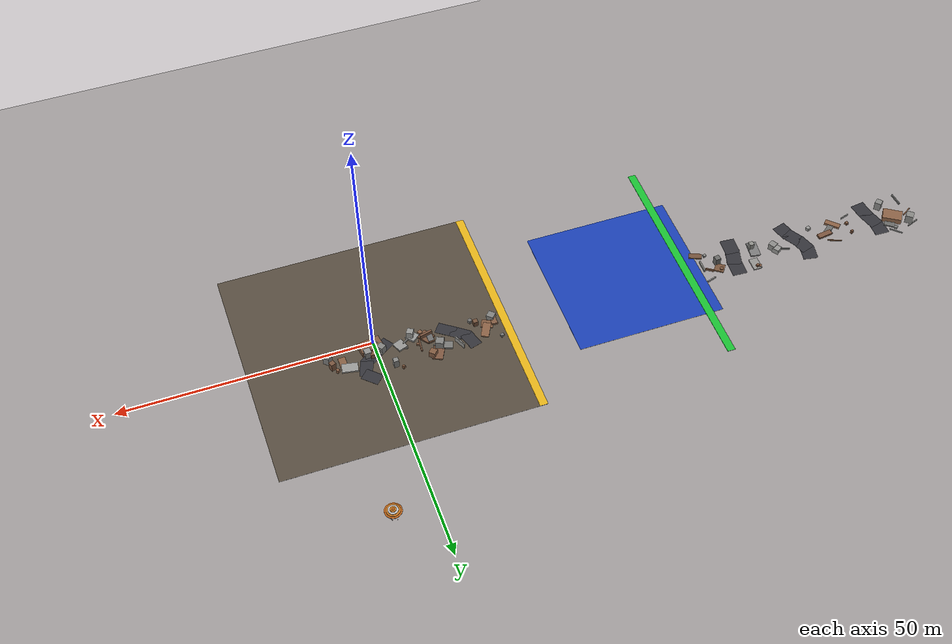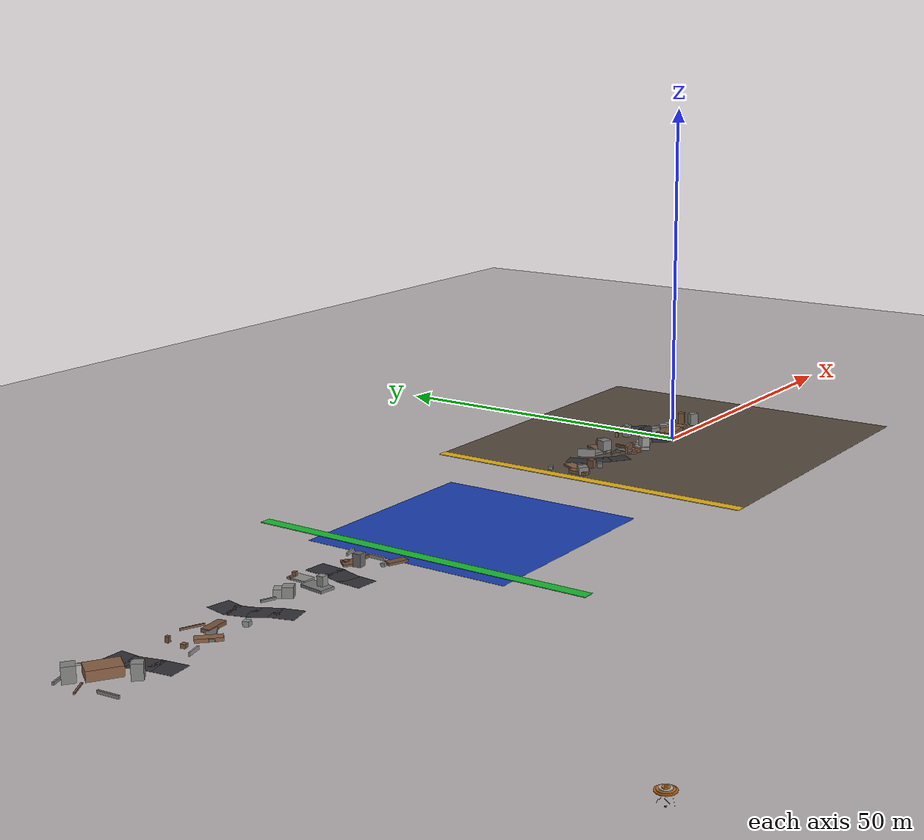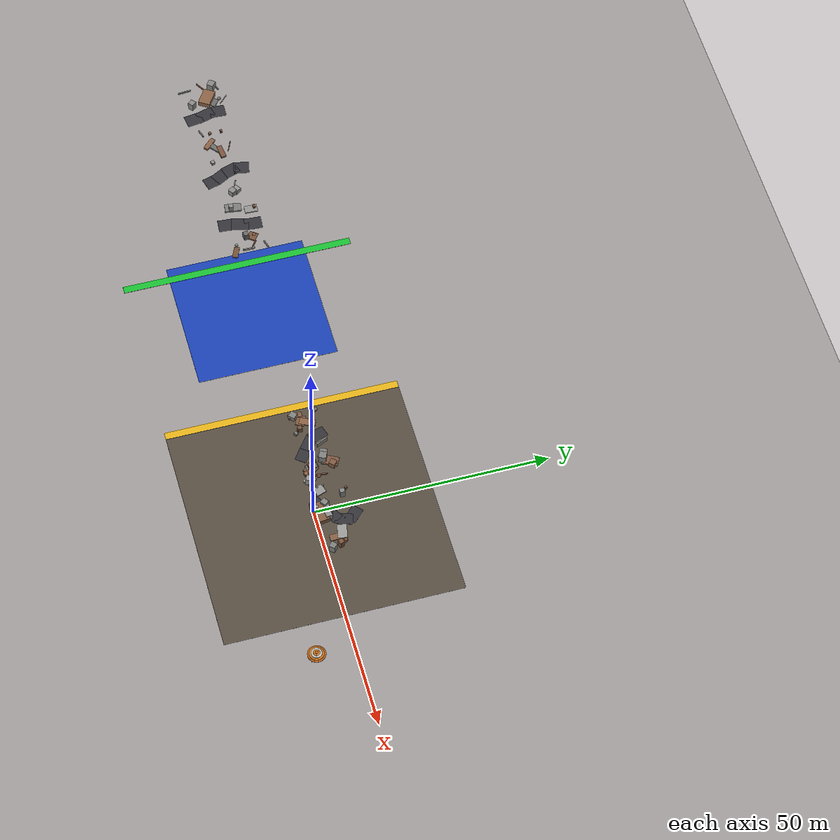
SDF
<sdf version="1.6">
 <world name="navitas_arena">
  <model name="ground_plane">
   <static>true</static>
   <link name="link">
    <collision name="collision">
     <geometry><plane><normal>0 0 1</normal><size>400 400</size></plane></geometry>
     <surface><friction><ode><mu>0.800</mu><mu2>0.800</mu2></ode></friction></surface>
    </collision>
    <visual name="visual">
     <cast_shadows>false</cast_shadows>
     <geometry><plane><normal>0 0 1</normal><size>400 400</size></plane></geometry>
     <material><ambient>0.300 0.290 0.270 1</ambient><diffuse>0.300 0.290 0.270 1</diffuse></material>
    </visual>
   </link>
  </model>
  <model name="landing">
   <static>true</static>
   <pose>-52.000 0.000 0.010 0 0 0.000</pose>
   <link name="link">
    <collision name="col"><geometry><box><size>30.000 30.000 0.020</size></box></geometry></collision>
    <visual name="vis">
     <geometry><box><size>30.000 30.000 0.020</size></box></geometry>
     <material><ambient>0.10 0.25 0.70 1</ambient><diffuse>0.10 0.25 0.70 1</diffuse></material>
    </visual>
   </link>
  </model>
  <model name="brd_kolay_E">
   <static>true</static>
   <pose>-64.200 0.000 0.040 0 0 0.000</pose>
   <link name="link">
    <collision name="col"><geometry><box><size>1.600 50.000 0.080</size></box></geometry></collision>
    <visual name="vis">
     <geometry><box><size>1.600 50.000 0.080</size></box></geometry>
     <material><ambient>0.10 0.75 0.20 1</ambient><diffuse>0.10 0.75 0.20 1</diffuse></material>
    </visual>
   </link>
  </model>
  <model name="road_kolay_1_12">
   <static>true</static>
   <pose>-105.322 0.400 0.040 0 0 1.706</pose>
   <link name="link">
    <collision name="col"><geometry><box><size>3.726 3.000 0.020</size></box></geometry></collision>
    <visual name="vis">
     <geometry><box><size>3.726 3.000 0.020</size></box></geometry>
     <material><ambient>0.20 0.20 0.22 1</ambient><diffuse>0.20 0.20 0.22 1</diffuse></material>
    </visual>
   </link>
  </model>
  <model name="road_kolay_1_13">
   <static>true</static>
   <pose>-105.885 3.200 0.040 0 0 1.831</pose>
   <link name="link">
    <collision name="col"><geometry><box><size>3.798 3.000 0.020</size></box></geometry></collision>
    <visual name="vis">
     <geometry><box><size>3.798 3.000 0.020</size></box></geometry>
     <material><ambient>0.20 0.20 0.22 1</ambient><diffuse>0.20 0.20 0.22 1</diffuse></material>
    </visual>
   </link>
  </model>
  <model name="road_kolay_1_14">
   <static>true</static>
   <pose>-106.227 5.898 0.040 0 0 1.546</pose>
   <link name="link">
    <collision name="col"><geometry><box><size>3.496 3.000 0.020</size></box></geometry></collision>
    <visual name="vis">
     <geometry><box><size>3.496 3.000 0.020</size></box></geometry>
     <material><ambient>0.20 0.20 0.22 1</ambient><diffuse>0.20 0.20 0.22 1</diffuse></material>
    </visual>
   </link>
  </model>
  <model name="road_kolay_2_8">
   <static>true</static>
   <pose>-87.446 0.167 0.040 0 0 1.851</pose>
   <link name="link">
    <collision name="col"><geometry><box><size>3.328 3.000 0.020</size></box></geometry></collision>
    <visual name="vis">
     <geometry><box><size>3.328 3.000 0.020</size></box></geometry>
     <material><ambient>0.20 0.20 0.22 1</ambient><diffuse>0.20 0.20 0.22 1</diffuse></material>
    </visual>
   </link>
  </model>
  <model name="road_kolay_2_9">
   <static>true</static>
   <pose>-88.438 2.500 0.040 0 0 2.084</pose>
   <link name="link">
    <collision name="col"><geometry><box><size>3.578 3.000 0.020</size></box></geometry></collision>
    <visual name="vis">
     <geometry><box><size>3.578 3.000 0.020</size></box></geometry>
     <material><ambient>0.20 0.20 0.22 1</ambient><diffuse>0.20 0.20 0.22 1</diffuse></material>
    </visual>
   </link>
  </model>
  <model name="road_kolay_2_10">
   <static>true</static>
   <pose>-89.461 4.833 0.040 0 0 1.875</pose>
   <link name="link">
    <collision name="col"><geometry><box><size>3.345 3.000 0.020</size></box></geometry></collision>
    <visual name="vis">
     <geometry><box><size>3.345 3.000 0.020</size></box></geometry>
     <material><ambient>0.20 0.20 0.22 1</ambient><diffuse>0.20 0.20 0.22 1</diffuse></material>
    </visual>
   </link>
  </model>
  <model name="road_kolay_2_11">
   <static>true</static>
   <pose>-89.602 7.213 0.040 0 0 1.387</pose>
   <link name="link">
    <collision name="col"><geometry><box><size>3.367 3.000 0.020</size></box></geometry></collision>
    <visual name="vis">
     <geometry><box><size>3.367 3.000 0.020</size></box></geometry>
     <material><ambient>0.20 0.20 0.22 1</ambient><diffuse>0.20 0.20 0.22 1</diffuse></material>
    </visual>
   </link>
  </model>
  <model name="road_kolay_3_11">
   <static>true</static>
   <pose>-75.192 0.400 0.040 0 0 1.500</pose>
   <link name="link">
    <collision name="col"><geometry><box><size>3.707 3.000 0.020</size></box></geometry></collision>
    <visual name="vis">
     <geometry><box><size>3.707 3.000 0.020</size></box></geometry>
     <material><ambient>0.20 0.20 0.22 1</ambient><diffuse>0.20 0.20 0.22 1</diffuse></material>
    </visual>
   </link>
  </model>
  <model name="road_kolay_3_12">
   <static>true</static>
   <pose>-74.697 3.200 0.040 0 0 1.295</pose>
   <link name="link">
    <collision name="col"><geometry><box><size>3.810 3.000 0.020</size></box></geometry></collision>
    <visual name="vis">
     <geometry><box><size>3.810 3.000 0.020</size></box></geometry>
     <material><ambient>0.20 0.20 0.22 1</ambient><diffuse>0.20 0.20 0.22 1</diffuse></material>
    </visual>
   </link>
  </model>
  <model name="road_kolay_3_13">
   <static>true</static>
   <pose>-74.203 6.020 0.040 0 0 1.502</pose>
   <link name="link">
    <collision name="col"><geometry><box><size>3.747 3.000 0.020</size></box></geometry></collision>
    <visual name="vis">
     <geometry><box><size>3.747 3.000 0.020</size></box></geometry>
     <material><ambient>0.20 0.20 0.22 1</ambient><diffuse>0.20 0.20 0.22 1</diffuse></material>
    </visual>
   </link>
  </model>
  <model name="deb_kolay_2">
   <static>true</static>
   <pose>-94.812 4.032 0.233 0 0 0.128</pose>
   <link name="link">
    <collision name="col"><geometry><box><size>3.085 1.114 0.466</size></box></geometry></collision>
    <visual name="vis">
     <geometry><box><size>3.085 1.114 0.466</size></box></geometry>
     <material><ambient>0.48 0.33 0.24 1</ambient><diffuse>0.48 0.33 0.24 1</diffuse></material>
    </visual>
   </link>
  </model>
  <model name="deb_kolay_5">
   <static>true</static>
   <pose>-97.569 2.033 0.222 0 0 2.353</pose>
   <link name="link">
    <collision name="col"><geometry><box><size>3.152 1.110 0.444</size></box></geometry></collision>
    <visual name="vis">
     <geometry><box><size>3.152 1.110 0.444</size></box></geometry>
     <material><ambient>0.54 0.38 0.27 1</ambient><diffuse>0.54 0.38 0.27 1</diffuse></material>
    </visual>
   </link>
  </model>
  <model name="deb_kolay_12">
   <static>true</static>
   <pose>-100.448 2.777 0.247 0 0 1.802</pose>
   <link name="link">
    <collision name="col"><geometry><box><size>0.603 0.603 0.495</size></box></geometry></collision>
    <visual name="vis">
     <geometry><box><size>0.603 0.603 0.495</size></box></geometry>
     <material><ambient>0.50 0.35 0.25 1</ambient><diffuse>0.50 0.35 0.25 1</diffuse></material>
    </visual>
   </link>
  </model>
  <model name="deb_kolay_13">
   <static>true</static>
   <pose>-78.050 6.470 0.128 0 0 1.544</pose>
   <link name="link">
    <collision name="col"><geometry><box><size>2.787 1.786 0.257</size></box></geometry></collision>
    <visual name="vis">
     <geometry><box><size>2.787 1.786 0.257</size></box></geometry>
     <material><ambient>0.57 0.57 0.56 1</ambient><diffuse>0.57 0.57 0.56 1</diffuse></material>
    </visual>
   </link>
  </model>
  <model name="deb_kolay_18">
   <static>true</static>
   <pose>-70.820 3.588 0.854 0 0 0.109</pose>
   <link name="link">
    <collision name="col"><geometry><box><size>1.096 1.096 1.708</size></box></geometry></collision>
    <visual name="vis">
     <geometry><box><size>1.096 1.096 1.708</size></box></geometry>
     <material><ambient>0.41 0.41 0.40 1</ambient><diffuse>0.41 0.41 0.40 1</diffuse></material>
    </visual>
   </link>
  </model>
  <model name="deb_kolay_29">
   <static>true</static>
   <pose>-100.912 0.905 0.226 0 0 0.300</pose>
   <link name="link">
    <collision name="col"><geometry><box><size>1.986 0.172 0.452</size></box></geometry></collision>
    <visual name="vis">
     <geometry><box><size>1.986 0.172 0.452</size></box></geometry>
     <material><ambient>0.61 0.61 0.60 1</ambient><diffuse>0.61 0.61 0.60 1</diffuse></material>
    </visual>
   </link>
  </model>
  <model name="deb_kolay_34">
   <static>true</static>
   <pose>-70.829 5.052 0.143 0 0 2.494</pose>
   <link name="link">
    <collision name="col"><geometry><box><size>1.950 1.940 0.286</size></box></geometry></collision>
    <visual name="vis">
     <geometry><box><size>1.950 1.940 0.286</size></box></geometry>
     <material><ambient>0.47 0.33 0.23 1</ambient><diffuse>0.47 0.33 0.23 1</diffuse></material>
    </visual>
   </link>
  </model>
  <model name="deb_kolay_35">
   <static>true</static>
   <pose>-67.663 3.540 0.232 0 0 1.550</pose>
   <link name="link">
    <collision name="col"><geometry><box><size>2.604 0.280 0.464</size></box></geometry></collision>
    <visual name="vis">
     <geometry><box><size>2.604 0.280 0.464</size></box></geometry>
     <material><ambient>0.55 0.55 0.53 1</ambient><diffuse>0.55 0.55 0.53 1</diffuse></material>
    </visual>
   </link>
  </model>
  <model name="deb_kolay_46">
   <static>true</static>
   <pose>-100.331 5.332 0.364 0 0 0.201</pose>
   <link name="link">
    <collision name="col"><geometry><box><size>0.465 0.465 0.729</size></box></geometry></collision>
    <visual name="vis">
     <geometry><box><size>0.465 0.465 0.729</size></box></geometry>
     <material><ambient>0.48 0.33 0.24 1</ambient><diffuse>0.48 0.33 0.24 1</diffuse></material>
    </visual>
   </link>
  </model>
  <model name="deb_kolay_70">
   <static>true</static>
   <pose>-83.176 3.701 0.691 0 0 0.532</pose>
   <link name="link">
    <collision name="col"><geometry><box><size>1.347 1.347 1.381</size></box></geometry></collision>
    <visual name="vis">
     <geometry><box><size>1.347 1.347 1.381</size></box></geometry>
     <material><ambient>0.54 0.54 0.53 1</ambient><diffuse>0.54 0.54 0.53 1</diffuse></material>
    </visual>
   </link>
  </model>
  <model name="deb_kolay_73">
   <static>true</static>
   <pose>-96.576 2.735 0.177 0 0 0.687</pose>
   <link name="link">
    <collision name="col"><geometry><box><size>3.539 1.204 0.353</size></box></geometry></collision>
    <visual name="vis">
     <geometry><box><size>3.539 1.204 0.353</size></box></geometry>
     <material><ambient>0.42 0.42 0.41 1</ambient><diffuse>0.42 0.42 0.41 1</diffuse></material>
    </visual>
   </link>
  </model>
  <model name="deb_kolay_74">
   <static>true</static>
   <pose>-67.444 0.538 0.165 0 0 2.740</pose>
   <link name="link">
    <collision name="col"><geometry><box><size>2.661 1.170 0.329</size></box></geometry></collision>
    <visual name="vis">
     <geometry><box><size>2.661 1.170 0.329</size></box></geometry>
     <material><ambient>0.45 0.32 0.23 1</ambient><diffuse>0.45 0.32 0.23 1</diffuse></material>
    </visual>
   </link>
  </model>
  <model name="deb_kolay_88">
   <static>true</static>
   <pose>-96.011 6.100 0.132 0 0 2.733</pose>
   <link name="link">
    <collision name="col"><geometry><box><size>2.892 0.162 0.263</size></box></geometry></collision>
    <visual name="vis">
     <geometry><box><size>2.892 0.162 0.263</size></box></geometry>
     <material><ambient>0.47 0.33 0.23 1</ambient><diffuse>0.47 0.33 0.23 1</diffuse></material>
    </visual>
   </link>
  </model>
  <model name="deb_kolay_91">
   <static>true</static>
   <pose>-68.714 4.912 0.230 0 0 2.529</pose>
   <link name="link">
    <collision name="col"><geometry><box><size>1.669 0.225 0.460</size></box></geometry></collision>
    <visual name="vis">
     <geometry><box><size>1.669 0.225 0.460</size></box></geometry>
     <material><ambient>0.46 0.32 0.23 1</ambient><diffuse>0.46 0.32 0.23 1</diffuse></material>
    </visual>
   </link>
  </model>
  <model name="deb_kolay_94">
   <static>true</static>
   <pose>-113.290 0.097 0.188 0 0 1.641</pose>
   <link name="link">
    <collision name="col"><geometry><box><size>2.883 0.220 0.377</size></box></geometry></collision>
    <visual name="vis">
     <geometry><box><size>2.883 0.220 0.377</size></box></geometry>
     <material><ambient>0.51 0.51 0.50 1</ambient><diffuse>0.51 0.51 0.50 1</diffuse></material>
    </visual>
   </link>
  </model>
  <model name="deb_kolay_98">
   <static>true</static>
   <pose>-78.134 7.294 0.407 0 0 1.745</pose>
   <link name="link">
    <collision name="col"><geometry><box><size>0.483 0.483 0.814</size></box></geometry></collision>
    <visual name="vis">
     <geometry><box><size>0.483 0.483 0.814</size></box></geometry>
     <material><ambient>0.51 0.35 0.25 1</ambient><diffuse>0.51 0.35 0.25 1</diffuse></material>
    </visual>
   </link>
  </model>
  <model name="deb_kolay_108">
   <static>true</static>
   <pose>-109.130 7.990 0.116 0 0 2.377</pose>
   <link name="link">
    <collision name="col"><geometry><box><size>2.723 0.154 0.232</size></box></geometry></collision>
    <visual name="vis">
     <geometry><box><size>2.723 0.154 0.232</size></box></geometry>
     <material><ambient>0.60 0.60 0.59 1</ambient><diffuse>0.60 0.60 0.59 1</diffuse></material>
    </visual>
   </link>
  </model>
  <model name="deb_kolay_109">
   <static>true</static>
   <pose>-69.258 1.068 0.214 0 0 0.124</pose>
   <link name="link">
    <collision name="col"><geometry><box><size>0.567 0.567 0.427</size></box></geometry></collision>
    <visual name="vis">
     <geometry><box><size>0.567 0.567 0.427</size></box></geometry>
     <material><ambient>0.55 0.55 0.54 1</ambient><diffuse>0.55 0.55 0.54 1</diffuse></material>
    </visual>
   </link>
  </model>
  <model name="deb_kolay_112">
   <static>true</static>
   <pose>-108.691 0.833 0.924 0 0 0.712</pose>
   <link name="link">
    <collision name="col"><geometry><box><size>1.302 1.302 1.849</size></box></geometry></collision>
    <visual name="vis">
     <geometry><box><size>1.302 1.302 1.849</size></box></geometry>
     <material><ambient>0.53 0.53 0.52 1</ambient><diffuse>0.53 0.53 0.52 1</diffuse></material>
    </visual>
   </link>
  </model>
  <model name="deb_kolay_117">
   <static>true</static>
   <pose>-113.352 7.147 0.177 0 0 0.350</pose>
   <link name="link">
    <collision name="col"><geometry><box><size>2.597 0.209 0.354</size></box></geometry></collision>
    <visual name="vis">
     <geometry><box><size>2.597 0.209 0.354</size></box></geometry>
     <material><ambient>0.50 0.50 0.49 1</ambient><diffuse>0.50 0.50 0.49 1</diffuse></material>
    </visual>
   </link>
  </model>
  <model name="deb_kolay_121">
   <static>true</static>
   <pose>-79.306 2.789 0.180 0 0 1.435</pose>
   <link name="link">
    <collision name="col"><geometry><box><size>3.592 2.011 0.360</size></box></geometry></collision>
    <visual name="vis">
     <geometry><box><size>3.592 2.011 0.360</size></box></geometry>
     <material><ambient>0.48 0.48 0.48 1</ambient><diffuse>0.48 0.48 0.48 1</diffuse></material>
    </visual>
   </link>
  </model>
  <model name="deb_kolay_122">
   <static>true</static>
   <pose>-112.985 6.188 0.944 0 0 2.458</pose>
   <link name="link">
    <collision name="col"><geometry><box><size>1.512 1.512 1.888</size></box></geometry></collision>
    <visual name="vis">
     <geometry><box><size>1.512 1.512 1.888</size></box></geometry>
     <material><ambient>0.52 0.52 0.51 1</ambient><diffuse>0.52 0.52 0.51 1</diffuse></material>
    </visual>
   </link>
  </model>
  <model name="deb_kolay_124">
   <static>true</static>
   <pose>-109.081 5.403 0.134 0 0 0.914</pose>
   <link name="link">
    <collision name="col"><geometry><box><size>2.321 2.088 0.268</size></box></geometry></collision>
    <visual name="vis">
     <geometry><box><size>2.321 2.088 0.268</size></box></geometry>
     <material><ambient>0.41 0.41 0.40 1</ambient><diffuse>0.41 0.41 0.40 1</diffuse></material>
    </visual>
   </link>
  </model>
  <model name="deb_kolay_127">
   <static>true</static>
   <pose>-78.664 7.325 0.196 0 0 1.235</pose>
   <link name="link">
    <collision name="col"><geometry><box><size>0.527 0.527 0.392</size></box></geometry></collision>
    <visual name="vis">
     <geometry><box><size>0.527 0.527 0.392</size></box></geometry>
     <material><ambient>0.54 0.38 0.27 1</ambient><diffuse>0.54 0.38 0.27 1</diffuse></material>
    </visual>
   </link>
  </model>
  <model name="deb_kolay_138">
   <static>true</static>
   <pose>-71.063 5.435 0.227 0 0 2.970</pose>
   <link name="link">
    <collision name="col"><geometry><box><size>0.628 0.628 0.454</size></box></geometry></collision>
    <visual name="vis">
     <geometry><box><size>0.628 0.628 0.454</size></box></geometry>
     <material><ambient>0.47 0.33 0.24 1</ambient><diffuse>0.47 0.33 0.24 1</diffuse></material>
    </visual>
   </link>
  </model>
  <model name="deb_kolay_153">
   <static>true</static>
   <pose>-83.600 4.657 0.524 0 0 2.187</pose>
   <link name="link">
    <collision name="col"><geometry><box><size>1.397 1.397 1.048</size></box></geometry></collision>
    <visual name="vis">
     <geometry><box><size>1.397 1.397 1.048</size></box></geometry>
     <material><ambient>0.58 0.58 0.57 1</ambient><diffuse>0.58 0.58 0.57 1</diffuse></material>
    </visual>
   </link>
  </model>
  <model name="deb_kolay_155">
   <static>true</static>
   <pose>-68.010 7.368 0.226 0 0 0.294</pose>
   <link name="link">
    <collision name="col"><geometry><box><size>1.974 0.204 0.451</size></box></geometry></collision>
    <visual name="vis">
     <geometry><box><size>1.974 0.204 0.451</size></box></geometry>
     <material><ambient>0.59 0.59 0.58 1</ambient><diffuse>0.59 0.59 0.58 1</diffuse></material>
    </visual>
   </link>
  </model>
  <model name="deb_kolay_156">
   <static>true</static>
   <pose>-113.831 3.876 0.097 0 0 0.553</pose>
   <link name="link">
    <collision name="col"><geometry><box><size>2.542 0.213 0.194</size></box></geometry></collision>
    <visual name="vis">
     <geometry><box><size>2.542 0.213 0.194</size></box></geometry>
     <material><ambient>0.47 0.33 0.24 1</ambient><diffuse>0.47 0.33 0.24 1</diffuse></material>
    </visual>
   </link>
  </model>
  <model name="deb_kolay_163">
   <static>true</static>
   <pose>-85.466 4.738 0.162 0 0 2.767</pose>
   <link name="link">
    <collision name="col"><geometry><box><size>1.858 0.238 0.324</size></box></geometry></collision>
    <visual name="vis">
     <geometry><box><size>1.858 0.238 0.324</size></box></geometry>
     <material><ambient>0.45 0.45 0.44 1</ambient><diffuse>0.45 0.45 0.44 1</diffuse></material>
    </visual>
   </link>
  </model>
  <model name="deb_kolay_171">
   <static>true</static>
   <pose>-109.542 7.117 0.193 0 0 2.391</pose>
   <link name="link">
    <collision name="col"><geometry><box><size>0.658 0.658 0.386</size></box></geometry></collision>
    <visual name="vis">
     <geometry><box><size>0.658 0.658 0.386</size></box></geometry>
     <material><ambient>0.47 0.47 0.46 1</ambient><diffuse>0.47 0.47 0.46 1</diffuse></material>
    </visual>
   </link>
  </model>
  <model name="deb_kolay_190">
   <static>true</static>
   <pose>-92.299 1.506 0.322 0 0 1.870</pose>
   <link name="link">
    <collision name="col"><geometry><box><size>0.772 0.772 0.643</size></box></geometry></collision>
    <visual name="vis">
     <geometry><box><size>0.772 0.772 0.643</size></box></geometry>
     <material><ambient>0.58 0.58 0.57 1</ambient><diffuse>0.58 0.58 0.57 1</diffuse></material>
    </visual>
   </link>
  </model>
  <model name="deb_kolay_201">
   <static>true</static>
   <pose>-78.951 2.290 0.803 0 0 1.581</pose>
   <link name="link">
    <collision name="col"><geometry><box><size>0.933 0.933 1.607</size></box></geometry></collision>
    <visual name="vis">
     <geometry><box><size>0.933 0.933 1.607</size></box></geometry>
     <material><ambient>0.56 0.56 0.54 1</ambient><diffuse>0.56 0.56 0.54 1</diffuse></material>
    </visual>
   </link>
  </model>
  <model name="chic_kolay_6">
   <static>true</static>
   <pose>-109.988 4.463 0.600 0 0 2.557</pose>
   <link name="link">
    <collision name="col"><geometry><box><size>3.909 2.631 1.200</size></box></geometry></collision>
    <visual name="vis">
     <geometry><box><size>3.909 2.631 1.200</size></box></geometry>
     <material><ambient>0.54 0.38 0.27 1</ambient><diffuse>0.54 0.38 0.27 1</diffuse></material>
    </visual>
   </link>
  </model>
  <model name="gd_orta">
   <static>true</static>
   <pose>0.000 0.000 0.010 0 0 0.000</pose>
   <link name="link">
    <collision name="col"><geometry><box><size>50.000 50.000 0.020</size></box></geometry></collision>
    <visual name="vis">
     <geometry><box><size>50.000 50.000 0.020</size></box></geometry>
     <material><ambient>0.34 0.30 0.25 1</ambient><diffuse>0.34 0.30 0.25 1</diffuse></material>
    </visual>
   </link>
  </model>
  <model name="brd_orta_W">
   <static>true</static>
   <pose>-25.800 0.000 0.040 0 0 0.000</pose>
   <link name="link">
    <collision name="col"><geometry><box><size>1.600 50.000 0.080</size></box></geometry></collision>
    <visual name="vis">
     <geometry><box><size>1.600 50.000 0.080</size></box></geometry>
     <material><ambient>0.90 0.70 0.10 1</ambient><diffuse>0.90 0.70 0.10 1</diffuse></material>
    </visual>
   </link>
  </model>
  <model name="road_orta_1_13">
   <static>true</static>
   <pose>-14.184 1.625 0.040 0 0 2.496</pose>
   <link name="link">
    <collision name="col"><geometry><box><size>3.810 2.500 0.020</size></box></geometry></collision>
    <visual name="vis">
     <geometry><box><size>3.810 2.500 0.020</size></box></geometry>
     <material><ambient>0.20 0.20 0.22 1</ambient><diffuse>0.20 0.20 0.22 1</diffuse></material>
    </visual>
   </link>
  </model>
  <model name="road_orta_1_14">
   <static>true</static>
   <pose>-16.472 3.375 0.040 0 0 2.481</pose>
   <link name="link">
    <collision name="col"><geometry><box><size>3.751 2.500 0.020</size></box></geometry></collision>
    <visual name="vis">
     <geometry><box><size>3.751 2.500 0.020</size></box></geometry>
     <material><ambient>0.20 0.20 0.22 1</ambient><diffuse>0.20 0.20 0.22 1</diffuse></material>
    </visual>
   </link>
  </model>
  <model name="road_orta_1_15">
   <static>true</static>
   <pose>-17.995 5.571 0.040 0 0 1.863</pose>
   <link name="link">
    <collision name="col"><geometry><box><size>3.659 2.500 0.020</size></box></geometry></collision>
    <visual name="vis">
     <geometry><box><size>3.659 2.500 0.020</size></box></geometry>
     <material><ambient>0.20 0.20 0.22 1</ambient><diffuse>0.20 0.20 0.22 1</diffuse></material>
    </visual>
   </link>
  </model>
  <model name="road_orta_2_9">
   <static>true</static>
   <pose>-1.265 1.625 0.040 0 0 0.604</pose>
   <link name="link">
    <collision name="col"><geometry><box><size>3.983 2.500 0.020</size></box></geometry></collision>
    <visual name="vis">
     <geometry><box><size>3.983 2.500 0.020</size></box></geometry>
     <material><ambient>0.20 0.20 0.22 1</ambient><diffuse>0.20 0.20 0.22 1</diffuse></material>
    </visual>
   </link>
  </model>
  <model name="road_orta_2_10">
   <static>true</static>
   <pose>1.277 3.375 0.040 0 0 0.602</pose>
   <link name="link">
    <collision name="col"><geometry><box><size>3.990 2.500 0.020</size></box></geometry></collision>
    <visual name="vis">
     <geometry><box><size>3.990 2.500 0.020</size></box></geometry>
     <material><ambient>0.20 0.20 0.22 1</ambient><diffuse>0.20 0.20 0.22 1</diffuse></material>
    </visual>
   </link>
  </model>
  <model name="road_orta_2_11">
   <static>true</static>
   <pose>3.008 5.571 0.040 0 0 1.237</pose>
   <link name="link">
    <collision name="col"><geometry><box><size>3.696 2.500 0.020</size></box></geometry></collision>
    <visual name="vis">
     <geometry><box><size>3.696 2.500 0.020</size></box></geometry>
     <material><ambient>0.20 0.20 0.22 1</ambient><diffuse>0.20 0.20 0.22 1</diffuse></material>
    </visual>
   </link>
  </model>
  <model name="road_orta_2_12">
   <static>true</static>
   <pose>2.506 7.813 0.040 0 0 2.376</pose>
   <link name="link">
    <collision name="col"><geometry><box><size>3.561 2.500 0.020</size></box></geometry></collision>
    <visual name="vis">
     <geometry><box><size>3.561 2.500 0.020</size></box></geometry>
     <material><ambient>0.20 0.20 0.22 1</ambient><diffuse>0.20 0.20 0.22 1</diffuse></material>
    </visual>
   </link>
  </model>
  <model name="blk_orta_2_1_0">
   <static>true</static>
   <pose>0.844 1.075 0.600 0 0 0.167</pose>
   <link name="link">
    <collision name="col"><geometry><box><size>4.488 2.668 1.200</size></box></geometry></collision>
    <visual name="vis">
     <geometry><box><size>4.488 2.668 1.200</size></box></geometry>
     <material><ambient>0.51 0.36 0.26 1</ambient><diffuse>0.51 0.36 0.26 1</diffuse></material>
    </visual>
   </link>
  </model>
  <model name="blk_orta_2_1_1">
   <static>true</static>
   <pose>1.035 3.298 0.600 0 0 0.013</pose>
   <link name="link">
    <collision name="col"><geometry><box><size>0.799 0.799 1.200</size></box></geometry></collision>
    <visual name="vis">
     <geometry><box><size>0.799 0.799 1.200</size></box></geometry>
     <material><ambient>0.52 0.37 0.26 1</ambient><diffuse>0.52 0.37 0.26 1</diffuse></material>
    </visual>
   </link>
  </model>
  <model name="blk_orta_2_1_2">
   <static>true</static>
   <pose>-0.576 0.590 0.600 0 0 2.436</pose>
   <link name="link">
    <collision name="col"><geometry><box><size>0.920 0.920 1.200</size></box></geometry></collision>
    <visual name="vis">
     <geometry><box><size>0.920 0.920 1.200</size></box></geometry>
     <material><ambient>0.59 0.59 0.58 1</ambient><diffuse>0.59 0.59 0.58 1</diffuse></material>
    </visual>
   </link>
  </model>
  <model name="blk_orta_2_1_3">
   <static>true</static>
   <pose>1.876 2.649 0.770 0 0 1.660</pose>
   <link name="link">
    <collision name="col"><geometry><box><size>1.301 1.301 1.540</size></box></geometry></collision>
    <visual name="vis">
     <geometry><box><size>1.301 1.301 1.540</size></box></geometry>
     <material><ambient>0.56 0.56 0.55 1</ambient><diffuse>0.56 0.56 0.55 1</diffuse></material>
    </visual>
   </link>
  </model>
  <model name="blk_orta_2_1_4">
   <static>true</static>
   <pose>-0.945 2.546 0.889 0 0 0.630</pose>
   <link name="link">
    <collision name="col"><geometry><box><size>1.273 1.273 1.778</size></box></geometry></collision>
    <visual name="vis">
     <geometry><box><size>1.273 1.273 1.778</size></box></geometry>
     <material><ambient>0.51 0.51 0.50 1</ambient><diffuse>0.51 0.51 0.50 1</diffuse></material>
    </visual>
   </link>
  </model>
  <model name="blk_orta_2_1_5">
   <static>true</static>
   <pose>-0.170 2.909 0.600 0 0 2.439</pose>
   <link name="link">
    <collision name="col"><geometry><box><size>0.805 0.805 1.200</size></box></geometry></collision>
    <visual name="vis">
     <geometry><box><size>0.805 0.805 1.200</size></box></geometry>
     <material><ambient>0.52 0.52 0.51 1</ambient><diffuse>0.52 0.52 0.51 1</diffuse></material>
    </visual>
   </link>
  </model>
  <model name="deb_orta_34">
   <static>true</static>
   <pose>-7.144 0.968 0.940 0 0 1.051</pose>
   <link name="link">
    <collision name="col"><geometry><box><size>1.252 1.252 1.881</size></box></geometry></collision>
    <visual name="vis">
     <geometry><box><size>1.252 1.252 1.881</size></box></geometry>
     <material><ambient>0.58 0.58 0.57 1</ambient><diffuse>0.58 0.58 0.57 1</diffuse></material>
    </visual>
   </link>
  </model>
  <model name="deb_orta_45">
   <static>true</static>
   <pose>-8.359 3.775 0.192 0 0 1.468</pose>
   <link name="link">
    <collision name="col"><geometry><box><size>2.877 0.270 0.383</size></box></geometry></collision>
    <visual name="vis">
     <geometry><box><size>2.877 0.270 0.383</size></box></geometry>
     <material><ambient>0.46 0.32 0.23 1</ambient><diffuse>0.46 0.32 0.23 1</diffuse></material>
    </visual>
   </link>
  </model>
  <model name="deb_orta_52">
   <static>true</static>
   <pose>-22.168 3.011 0.135 0 0 2.711</pose>
   <link name="link">
    <collision name="col"><geometry><box><size>2.342 1.821 0.270</size></box></geometry></collision>
    <visual name="vis">
     <geometry><box><size>2.342 1.821 0.270</size></box></geometry>
     <material><ambient>0.50 0.35 0.25 1</ambient><diffuse>0.50 0.35 0.25 1</diffuse></material>
    </visual>
   </link>
  </model>
  <model name="deb_orta_53">
   <static>true</static>
   <pose>-21.455 4.311 0.143 0 0 1.109</pose>
   <link name="link">
    <collision name="col"><geometry><box><size>3.430 1.567 0.286</size></box></geometry></collision>
    <visual name="vis">
     <geometry><box><size>3.430 1.567 0.286</size></box></geometry>
     <material><ambient>0.54 0.38 0.27 1</ambient><diffuse>0.54 0.38 0.27 1</diffuse></material>
    </visual>
   </link>
  </model>
  <model name="deb_orta_60">
   <static>true</static>
   <pose>-6.363 1.632 0.205 0 0 0.535</pose>
   <link name="link">
    <collision name="col"><geometry><box><size>2.507 0.276 0.410</size></box></geometry></collision>
    <visual name="vis">
     <geometry><box><size>2.507 0.276 0.410</size></box></geometry>
     <material><ambient>0.41 0.41 0.40 1</ambient><diffuse>0.41 0.41 0.40 1</diffuse></material>
    </visual>
   </link>
  </model>
  <model name="deb_orta_66">
   <static>true</static>
   <pose>-11.477 3.498 0.182 0 0 0.145</pose>
   <link name="link">
    <collision name="col"><geometry><box><size>2.831 0.206 0.364</size></box></geometry></collision>
    <visual name="vis">
     <geometry><box><size>2.831 0.206 0.364</size></box></geometry>
     <material><ambient>0.45 0.32 0.23 1</ambient><diffuse>0.45 0.32 0.23 1</diffuse></material>
    </visual>
   </link>
  </model>
  <model name="deb_orta_67">
   <static>true</static>
   <pose>-23.571 2.165 0.237 0 0 1.569</pose>
   <link name="link">
    <collision name="col"><geometry><box><size>2.878 1.170 0.473</size></box></geometry></collision>
    <visual name="vis">
     <geometry><box><size>2.878 1.170 0.473</size></box></geometry>
     <material><ambient>0.51 0.36 0.26 1</ambient><diffuse>0.51 0.36 0.26 1</diffuse></material>
    </visual>
   </link>
  </model>
  <model name="deb_orta_73">
   <static>true</static>
   <pose>-4.671 2.460 0.187 0 0 1.927</pose>
   <link name="link">
    <collision name="col"><geometry><box><size>2.150 1.988 0.375</size></box></geometry></collision>
    <visual name="vis">
     <geometry><box><size>2.150 1.988 0.375</size></box></geometry>
     <material><ambient>0.58 0.58 0.57 1</ambient><diffuse>0.58 0.58 0.57 1</diffuse></material>
    </visual>
   </link>
  </model>
  <model name="deb_orta_81">
   <static>true</static>
   <pose>-3.796 7.778 0.368 0 0 2.009</pose>
   <link name="link">
    <collision name="col"><geometry><box><size>0.463 0.463 0.736</size></box></geometry></collision>
    <visual name="vis">
     <geometry><box><size>0.463 0.463 0.736</size></box></geometry>
     <material><ambient>0.49 0.34 0.24 1</ambient><diffuse>0.49 0.34 0.24 1</diffuse></material>
    </visual>
   </link>
  </model>
  <model name="deb_orta_87">
   <static>true</static>
   <pose>9.487 1.615 0.927 0 0 2.376</pose>
   <link name="link">
    <collision name="col"><geometry><box><size>1.277 1.277 1.854</size></box></geometry></collision>
    <visual name="vis">
     <geometry><box><size>1.277 1.277 1.854</size></box></geometry>
     <material><ambient>0.49 0.49 0.48 1</ambient><diffuse>0.49 0.49 0.48 1</diffuse></material>
    </visual>
   </link>
  </model>
  <model name="deb_orta_94">
   <static>true</static>
   <pose>-23.985 6.708 0.255 0 0 0.413</pose>
   <link name="link">
    <collision name="col"><geometry><box><size>0.644 0.644 0.510</size></box></geometry></collision>
    <visual name="vis">
     <geometry><box><size>0.644 0.644 0.510</size></box></geometry>
     <material><ambient>0.46 0.46 0.45 1</ambient><diffuse>0.46 0.46 0.45 1</diffuse></material>
    </visual>
   </link>
  </model>
  <model name="deb_orta_101">
   <static>true</static>
   <pose>-9.123 0.818 0.310 0 0 0.291</pose>
   <link name="link">
    <collision name="col"><geometry><box><size>0.797 0.797 0.620</size></box></geometry></collision>
    <visual name="vis">
     <geometry><box><size>0.797 0.797 0.620</size></box></geometry>
     <material><ambient>0.54 0.38 0.27 1</ambient><diffuse>0.54 0.38 0.27 1</diffuse></material>
    </visual>
   </link>
  </model>
  <model name="deb_orta_104">
   <static>true</static>
   <pose>5.924 4.437 0.178 0 0 2.960</pose>
   <link name="link">
    <collision name="col"><geometry><box><size>3.154 1.990 0.355</size></box></geometry></collision>
    <visual name="vis">
     <geometry><box><size>3.154 1.990 0.355</size></box></geometry>
     <material><ambient>0.60 0.60 0.59 1</ambient><diffuse>0.60 0.60 0.59 1</diffuse></material>
    </visual>
   </link>
  </model>
  <model name="deb_orta_109">
   <static>true</static>
   <pose>-11.868 4.535 0.180 0 0 0.144</pose>
   <link name="link">
    <collision name="col"><geometry><box><size>2.327 0.289 0.359</size></box></geometry></collision>
    <visual name="vis">
     <geometry><box><size>2.327 0.289 0.359</size></box></geometry>
     <material><ambient>0.41 0.41 0.40 1</ambient><diffuse>0.41 0.41 0.40 1</diffuse></material>
    </visual>
   </link>
  </model>
  <model name="deb_orta_117">
   <static>true</static>
   <pose>6.834 3.138 0.145 0 0 1.582</pose>
   <link name="link">
    <collision name="col"><geometry><box><size>3.115 1.428 0.290</size></box></geometry></collision>
    <visual name="vis">
     <geometry><box><size>3.115 1.428 0.290</size></box></geometry>
     <material><ambient>0.52 0.37 0.26 1</ambient><diffuse>0.52 0.37 0.26 1</diffuse></material>
    </visual>
   </link>
  </model>
  <model name="deb_orta_127">
   <static>true</static>
   <pose>8.304 4.593 0.401 0 0 0.718</pose>
   <link name="link">
    <collision name="col"><geometry><box><size>0.540 0.540 0.802</size></box></geometry></collision>
    <visual name="vis">
     <geometry><box><size>0.540 0.540 0.802</size></box></geometry>
     <material><ambient>0.52 0.36 0.26 1</ambient><diffuse>0.52 0.36 0.26 1</diffuse></material>
    </visual>
   </link>
  </model>
  <model name="deb_orta_133">
   <static>true</static>
   <pose>-11.092 6.552 0.155 0 0 1.101</pose>
   <link name="link">
    <collision name="col"><geometry><box><size>3.262 2.109 0.310</size></box></geometry></collision>
    <visual name="vis">
     <geometry><box><size>3.262 2.109 0.310</size></box></geometry>
     <material><ambient>0.49 0.34 0.25 1</ambient><diffuse>0.49 0.34 0.25 1</diffuse></material>
    </visual>
   </link>
  </model>
  <model name="deb_orta_135">
   <static>true</static>
   <pose>-19.178 1.327 0.323 0 0 0.523</pose>
   <link name="link">
    <collision name="col"><geometry><box><size>0.717 0.717 0.645</size></box></geometry></collision>
    <visual name="vis">
     <geometry><box><size>0.717 0.717 0.645</size></box></geometry>
     <material><ambient>0.45 0.45 0.44 1</ambient><diffuse>0.45 0.45 0.44 1</diffuse></material>
    </visual>
   </link>
  </model>
  <model name="deb_orta_141">
   <static>true</static>
   <pose>8.981 3.427 0.886 0 0 0.353</pose>
   <link name="link">
    <collision name="col"><geometry><box><size>0.987 0.987 1.772</size></box></geometry></collision>
    <visual name="vis">
     <geometry><box><size>0.987 0.987 1.772</size></box></geometry>
     <material><ambient>0.47 0.33 0.24 1</ambient><diffuse>0.47 0.33 0.24 1</diffuse></material>
    </visual>
   </link>
  </model>
  <model name="deb_orta_154">
   <static>true</static>
   <pose>-9.993 6.741 0.670 0 0 0.838</pose>
   <link name="link">
    <collision name="col"><geometry><box><size>1.304 1.304 1.341</size></box></geometry></collision>
    <visual name="vis">
     <geometry><box><size>1.304 1.304 1.341</size></box></geometry>
     <material><ambient>0.50 0.35 0.25 1</ambient><diffuse>0.50 0.35 0.25 1</diffuse></material>
    </visual>
   </link>
  </model>
  <model name="deb_orta_165">
   <static>true</static>
   <pose>-11.950 5.683 0.115 0 0 2.701</pose>
   <link name="link">
    <collision name="col"><geometry><box><size>1.511 0.222 0.229</size></box></geometry></collision>
    <visual name="vis">
     <geometry><box><size>1.511 0.222 0.229</size></box></geometry>
     <material><ambient>0.53 0.37 0.27 1</ambient><diffuse>0.53 0.37 0.27 1</diffuse></material>
    </visual>
   </link>
  </model>
  <model name="deb_orta_173">
   <static>true</static>
   <pose>-7.463 1.166 0.231 0 0 0.713</pose>
   <link name="link">
    <collision name="col"><geometry><box><size>1.962 1.982 0.463</size></box></geometry></collision>
    <visual name="vis">
     <geometry><box><size>1.962 1.982 0.463</size></box></geometry>
     <material><ambient>0.58 0.58 0.57 1</ambient><diffuse>0.58 0.58 0.57 1</diffuse></material>
    </visual>
   </link>
  </model>
  <model name="deb_orta_175">
   <static>true</static>
   <pose>-23.385 1.707 0.566 0 0 2.356</pose>
   <link name="link">
    <collision name="col"><geometry><box><size>1.426 1.426 1.133</size></box></geometry></collision>
    <visual name="vis">
     <geometry><box><size>1.426 1.426 1.133</size></box></geometry>
     <material><ambient>0.50 0.50 0.49 1</ambient><diffuse>0.50 0.50 0.49 1</diffuse></material>
    </visual>
   </link>
  </model>
  <model name="deb_orta_180">
   <static>true</static>
   <pose>-11.860 5.087 0.943 0 0 2.715</pose>
   <link name="link">
    <collision name="col"><geometry><box><size>1.555 1.555 1.885</size></box></geometry></collision>
    <visual name="vis">
     <geometry><box><size>1.555 1.555 1.885</size></box></geometry>
     <material><ambient>0.50 0.50 0.49 1</ambient><diffuse>0.50 0.50 0.49 1</diffuse></material>
    </visual>
   </link>
  </model>
  <model name="deb_orta_196">
   <static>true</static>
   <pose>-10.029 2.078 0.181 0 0 2.213</pose>
   <link name="link">
    <collision name="col"><geometry><box><size>2.530 2.198 0.362</size></box></geometry></collision>
    <visual name="vis">
     <geometry><box><size>2.530 2.198 0.362</size></box></geometry>
     <material><ambient>0.46 0.32 0.23 1</ambient><diffuse>0.46 0.32 0.23 1</diffuse></material>
    </visual>
   </link>
  </model>
  <model name="deb_orta_202">
   <static>true</static>
   <pose>-4.646 2.821 0.158 0 0 2.576</pose>
   <link name="link">
    <collision name="col"><geometry><box><size>2.972 0.190 0.316</size></box></geometry></collision>
    <visual name="vis">
     <geometry><box><size>2.972 0.190 0.316</size></box></geometry>
     <material><ambient>0.51 0.51 0.50 1</ambient><diffuse>0.51 0.51 0.50 1</diffuse></material>
    </visual>
   </link>
  </model>
  <model name="deb_orta_209">
   <static>true</static>
   <pose>-8.040 3.279 0.186 0 0 2.733</pose>
   <link name="link">
    <collision name="col"><geometry><box><size>0.581 0.581 0.372</size></box></geometry></collision>
    <visual name="vis">
     <geometry><box><size>0.581 0.581 0.372</size></box></geometry>
     <material><ambient>0.46 0.32 0.23 1</ambient><diffuse>0.46 0.32 0.23 1</diffuse></material>
    </visual>
   </link>
  </model>
  <model name="deb_orta_215">
   <static>true</static>
   <pose>-12.797 5.305 0.194 0 0 2.810</pose>
   <link name="link">
    <collision name="col"><geometry><box><size>2.985 1.586 0.388</size></box></geometry></collision>
    <visual name="vis">
     <geometry><box><size>2.985 1.586 0.388</size></box></geometry>
     <material><ambient>0.47 0.47 0.46 1</ambient><diffuse>0.47 0.47 0.46 1</diffuse></material>
    </visual>
   </link>
  </model>
  <model name="deb_orta_219">
   <static>true</static>
   <pose>-7.420 0.979 0.201 0 0 1.498</pose>
   <link name="link">
    <collision name="col"><geometry><box><size>0.646 0.646 0.402</size></box></geometry></collision>
    <visual name="vis">
     <geometry><box><size>0.646 0.646 0.402</size></box></geometry>
     <material><ambient>0.60 0.60 0.59 1</ambient><diffuse>0.60 0.60 0.59 1</diffuse></material>
    </visual>
   </link>
  </model>
  <model name="deb_orta_227">
   <static>true</static>
   <pose>-2.573 6.708 0.915 0 0 1.596</pose>
   <link name="link">
    <collision name="col"><geometry><box><size>0.978 0.978 1.830</size></box></geometry></collision>
    <visual name="vis">
     <geometry><box><size>0.978 0.978 1.830</size></box></geometry>
     <material><ambient>0.53 0.53 0.52 1</ambient><diffuse>0.53 0.53 0.52 1</diffuse></material>
    </visual>
   </link>
  </model>
  <model name="deb_orta_230">
   <static>true</static>
   <pose>-10.613 2.316 0.222 0 0 1.609</pose>
   <link name="link">
    <collision name="col"><geometry><box><size>2.389 1.155 0.445</size></box></geometry></collision>
    <visual name="vis">
     <geometry><box><size>2.389 1.155 0.445</size></box></geometry>
     <material><ambient>0.42 0.42 0.42 1</ambient><diffuse>0.42 0.42 0.42 1</diffuse></material>
    </visual>
   </link>
  </model>
  <model name="chic_orta_5">
   <static>true</static>
   <pose>-9.997 1.944 0.600 0 0 0.231</pose>
   <link name="link">
    <collision name="col"><geometry><box><size>2.521 0.393 1.200</size></box></geometry></collision>
    <visual name="vis">
     <geometry><box><size>2.521 0.393 1.200</size></box></geometry>
     <material><ambient>0.49 0.34 0.25 1</ambient><diffuse>0.49 0.34 0.25 1</diffuse></material>
    </visual>
   </link>
  </model>
  <model name="chic_orta_6">
   <static>true</static>
   <pose>-19.969 2.276 0.600 0 0 1.585</pose>
   <link name="link">
    <collision name="col"><geometry><box><size>0.923 0.923 1.200</size></box></geometry></collision>
    <visual name="vis">
     <geometry><box><size>0.923 0.923 1.200</size></box></geometry>
     <material><ambient>0.45 0.32 0.23 1</ambient><diffuse>0.45 0.32 0.23 1</diffuse></material>
    </visual>
   </link>
  </model>
  <model name="chic_orta_7">
   <static>true</static>
   <pose>-15.632 5.906 0.600 0 0 1.994</pose>
   <link name="link">
    <collision name="col"><geometry><box><size>2.563 0.251 1.200</size></box></geometry></collision>
    <visual name="vis">
     <geometry><box><size>2.563 0.251 1.200</size></box></geometry>
     <material><ambient>0.56 0.56 0.55 1</ambient><diffuse>0.56 0.56 0.55 1</diffuse></material>
    </visual>
   </link>
  </model>
  <model name="parachute">
   <static>true</static>
   <pose>0 0 -60 0 0 0</pose>
   <link name="link">
    <visual name="dome0">
     <geometry><cylinder><radius>2.10</radius><length>0.16</length></cylinder></geometry>
     <material><ambient>0.95 0.45 0.05 1</ambient><diffuse>0.95 0.45 0.05 1</diffuse></material>
    </visual>
    <visual name="dome1">
     <pose>0 0 0.22 0 0 0</pose>
     <geometry><cylinder><radius>1.70</radius><length>0.16</length></cylinder></geometry>
     <material><ambient>1.0 0.55 0.08 1</ambient><diffuse>1.0 0.55 0.08 1</diffuse></material>
    </visual>
    <visual name="dome2">
     <pose>0 0 0.42 0 0 0</pose>
     <geometry><cylinder><radius>1.25</radius><length>0.16</length></cylinder></geometry>
     <material><ambient>0.95 0.95 0.95 1</ambient><diffuse>0.95 0.95 0.95 1</diffuse></material>
    </visual>
    <visual name="dome3">
     <pose>0 0 0.58 0 0 0</pose>
     <geometry><cylinder><radius>0.75</radius><length>0.16</length></cylinder></geometry>
     <material><ambient>1.0 0.55 0.08 1</ambient><diffuse>1.0 0.55 0.08 1</diffuse></material>
    </visual>
    <visual name="dome4">
     <pose>0 0 0.70 0 0 0</pose>
     <geometry><cylinder><radius>0.32</radius><length>0.16</length></cylinder></geometry>
     <material><ambient>0.95 0.45 0.05 1</ambient><diffuse>0.95 0.45 0.05 1</diffuse></material>
    </visual>
    <visual name="line0">
     <pose>0.90 0.90 -1.5 0.500 0.500 0</pose>
     <geometry><cylinder><radius>0.02</radius><length>3.0</length></cylinder></geometry>
     <material><ambient>0.1 0.1 0.1 1</ambient><diffuse>0.15 0.15 0.15 1</diffuse></material>
    </visual>
    <visual name="line1">
     <pose>0.90 -0.90 -1.5 -0.500 0.500 0</pose>
     <geometry><cylinder><radius>0.02</radius><length>3.0</length></cylinder></geometry>
     <material><ambient>0.1 0.1 0.1 1</ambient><diffuse>0.15 0.15 0.15 1</diffuse></material>
    </visual>
    <visual name="line2">
     <pose>-0.90 0.90 -1.5 0.500 -0.500 0</pose>
     <geometry><cylinder><radius>0.02</radius><length>3.0</length></cylinder></geometry>
     <material><ambient>0.1 0.1 0.1 1</ambient><diffuse>0.15 0.15 0.15 1</diffuse></material>
    </visual>
    <visual name="line3">
     <pose>-0.90 -0.90 -1.5 -0.500 -0.500 0</pose>
     <geometry><cylinder><radius>0.02</radius><length>3.0</length></cylinder></geometry>
     <material><ambient>0.1 0.1 0.1 1</ambient><diffuse>0.15 0.15 0.15 1</diffuse></material>
    </visual>
    <visual name="harness">
     <pose>0 0 -3.0 0 0 0</pose>
     <geometry><box><size>0.3 0.3 0.2</size></box></geometry>
     <material><ambient>0.2 0.2 0.2 1</ambient><diffuse>0.25 0.25 0.25 1</diffuse></material>
    </visual>
   </link>
  </model>
  <model name="rec_cam">
   <static>true</static>
   <pose>-90.000 0.000 72 0 1.5708 1.5708</pose>
   <link name="link">
    <sensor name="cam" type="camera">
     <camera>
      <horizontal_fov>1.25</horizontal_fov>
      <image><width>1280</width><height>720</height><format>R8G8B8</format></image>
      <clip><near>0.1</near><far>200</far></clip>
      <save enabled="true"><path>/tmp/frames</path></save>
     </camera>
     <always_on>1</always_on>
     <update_rate>30</update_rate>
    </sensor>
   </link>
  </model>
 </world>
</sdf>
